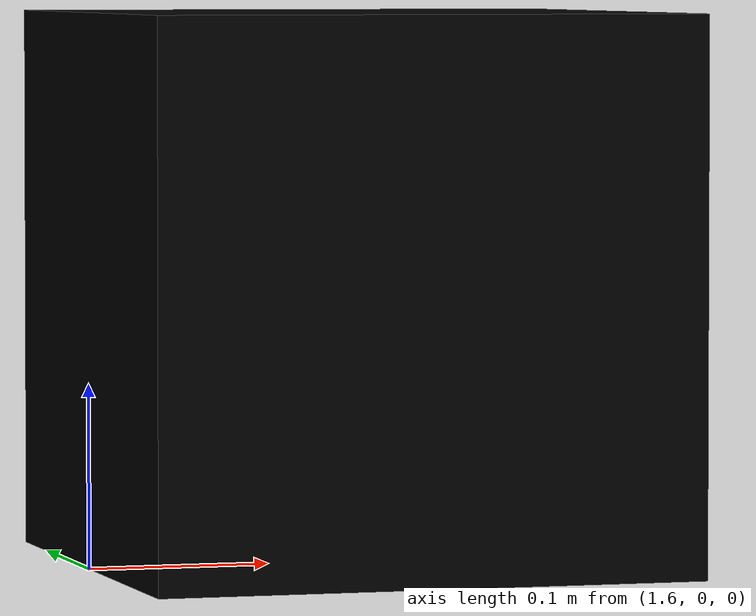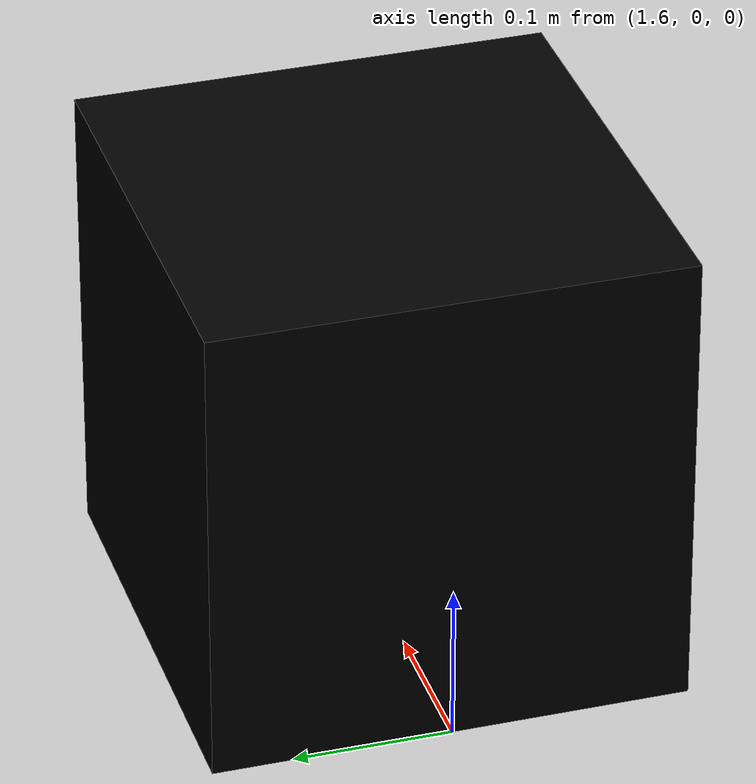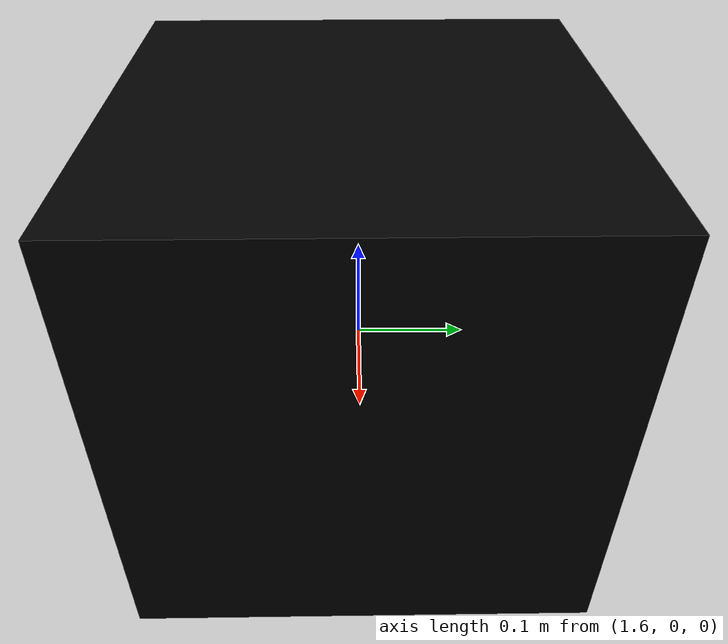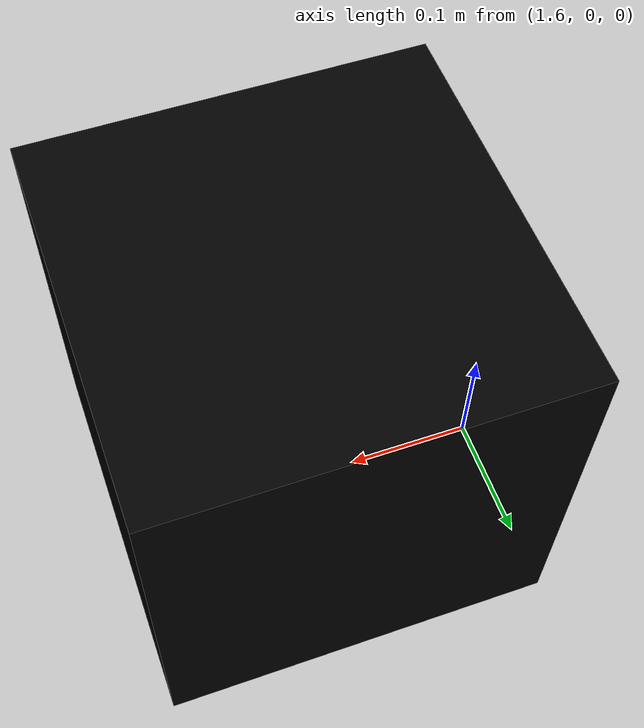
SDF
<?xml version='1.0'?>
<sdf version='1.4'>
  <model name="AruCo_Block_0">
    <static>true</static>
    <link name='chassis'>
      <pose>1.75 0 0.15 0 0 0</pose>

      <collision name='collision'>
        <geometry>
          <box>
            <size>.3 .3 .3</size>
          </box>
        </geometry>
      </collision>

      <visual name='visual'>
        <geometry>
          <box>
            <size>.3 .3 .3</size>
          </box>
        </geometry>
        <material>
          <script>
            <uri>model://AruCo_Block_0/materials/scripts</uri>
            <uri>model://AruCo_Block_0/materials/textures</uri>
            <name>block0</name>
          </script>
          <ambient>0 0 0 1</ambient>
          <diffuse>0 0 0 1</diffuse>
          <specular>0 0 0 0</specular>s
          <emissive>1 1 1 1</emissive>
        </material>
      </visual>
    </link>
  </model>
</sdf>
